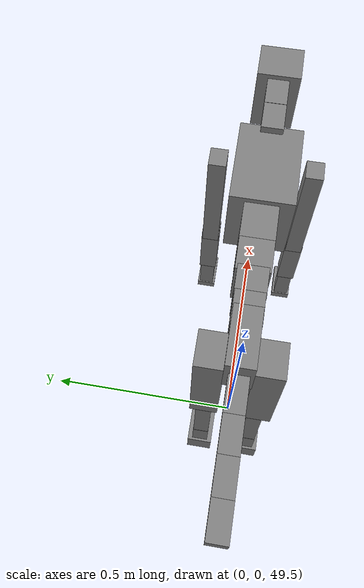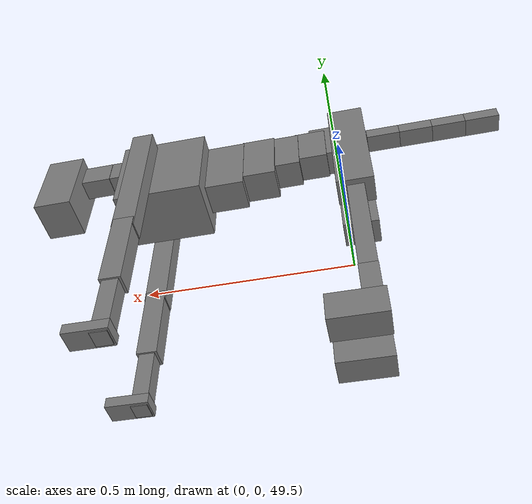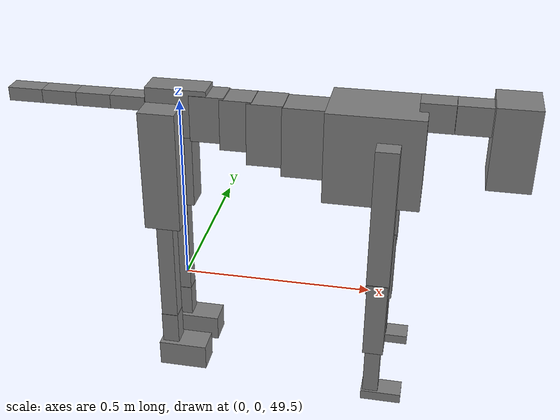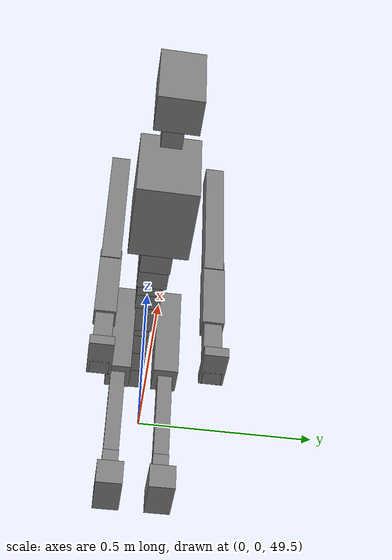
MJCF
<mujoco model="dog">

    <default>
        <joint armature="0.02" stiffness="1" damping="0.2" limited="true"/>
        <geom condim="3" friction="1 0.05 0.05" margin="0.01"/>
        <motor ctrllimited="true" ctrlrange="-1.0 1.0" forcelimited="true" gear="50"/>
    </default>

    <compiler inertiafromgeom="true" angle="radian"/>

    <option timestep="0.016" iterations="50" tolerance="1e-10" solver="Newton" jacobian="dense" cone="pyramidal"/>

    <size nconmax="20000" njmax="60000" nstack="5000000"/>
    <visual>
        <map force="0.1" zfar="30"/>
        <rgba haze="0.15 0.25 0.35 1"/>
        <quality shadowsize="2048"/>
        <global offwidth="800" offheight="800"/>
    </visual>

    <asset>
        <texture type="skybox" builtin="gradient" rgb1="0.3 0.5 0.7" rgb2="0 0 0" width="512" height="512"/>
        <texture name="texplane" type="2d" builtin="checker" rgb1=".2 .3 .4" rgb2=".1 0.15 0.2" width="512" height="512"
                 mark="cross" markrgb=".8 .8 .8"/>
        <texture name="texgeom" type="cube" builtin="flat" mark="cross" width="127" height="1278" rgb1="0.8 0.6 0.4"
                 rgb2="0.8 0.6 0.4" markrgb="1 1 1" random="0.01"/>

        <material name="matplane" reflectance="0.3" texture="texplane" texrepeat="1 1" texuniform="true"/>
        <material name="matgeom" texture="texgeom" texuniform="true" rgba="0.8 0.6 .4 1"/>
    </asset>

    <worldbody>
        <geom name="floor" pos="0 0 0" size="0 0 .25" type="plane" material="matplane" condim="3"/>

        <light directional="false" diffuse=".2 .2 .2" specular="0 0 0" pos="0 0 5" dir="0 0 -1" castshadow="false"/>
        <light mode="targetbodycom" target="torso" directional="false" diffuse=".8 .8 .8" specular="0.3 0.3 0.3"
               pos="0 0 4.0" dir="0 0 -1"/>

        <body name="root" pos="0 0 50">
            <freejoint name="root_1"/>
            <geom type="box" pos="0 0 -0.02" size="0.0774  0.0358  0.063" density="2030"/>

            <body name="spine1" pos="0.054 0 0">
                <joint name="spine1_y" axis="0 1 0" range="0 0.7" limited="true"/>
                <geom type="box" pos="0.02375 0 -0.03" size="0.04375  0.0375  0.05985" density="2030"/>

                <body name="spine2" pos="0.0612 0 0">
                    <joint name="spine2_y" axis="0 1 0" range="-0.15 0.15" limited="true"/>
                    <geom type="box" pos="0.03555  0  -0.04" size="0.04055  0.039  0.06615" density="2030"/>

                    <body name="spine3" pos="0.0730 0 0">
                        <joint name="spine3_y" axis="0 1 0" range="-0.15 0.15" limited="true"/>
                        <geom type="box" pos="0.03555  0  -0.057" size="0.04555  0.0445  0.081" density="2030"/>

                        <body name="spine4" pos="0.0780 0 0">
                            <joint name="spine4_y" axis="0 1 0" range="-0.15 0.15" limited="true"/>
                            <geom type="box" pos="0.05265  0  -0.07" size="0.05265  0.045  0.09135" density="2030"/>

                            <body name="torso" pos="0.1082 0 0">
                                <joint name="torso_y" axis="0 1 0" range="-0.15 0.15" limited="true"/>
                                <geom type="box" pos="0.11925  0  -0.085" size="0.11925  0.085  0.11745"
                                      density="2030"/>

                                <body name="neck1" pos="0.2160  0   0.0180">
                                    <joint name="neck1_y" axis="0 1 0" range="-1.2  -1" limited="true"/>
                                    <geom type="box" pos="0.0423  0  0" size="0.0423  0.03  0.036" density="2325"/>

                                    <body name="neck2" pos="0.0853  0  0">
                                        <joint name="neck2_y" axis="0 1 0" range="0.1  0" limited="true"/>
                                        <geom type="box" pos="0.0423  0  0" size="0.0423  0.03  0.036" density="2325"/>

                                        <body name="head" pos="0.0853  0  0">
                                            <joint name="head_y" axis="0 1 0" range="-0.3  -0.2" limited="true"/>
                                            <geom type="box" pos="0.0531  0  -0.055" size="0.0531  0.06  0.1044"
                                                  density="4030"/>

                                        </body>
                                    </body>
                                </body>

                                <body name="front_shoulder" pos="0.156  0   -0.0480">
                                    <joint name="front_shoulder_y" axis="0 1 0" range="-1 1.5" limited="true"/>
                                    <geom type="box" pos="0 0.13 -0.1673" size="0.0284  0.0243  0.1939" density="1158"/>
                                    <geom type="box" pos="0 -0.13 -0.1673" size="0.0284  0.0243  0.1939"
                                          density="1158"/>

                                    <body name="front_elbow" pos="0  0  -0.3345">
                                        <joint name="front_elbow_y" axis="0 1 0" range="-2 0" limited="true"/>
                                        <geom type="box" pos="0 0.13 -0.1033" size="0.0260  0.0265  0.1033"
                                              density="1081"/>
                                        <geom type="box" pos="0 -0.13 -0.1033" size="0.0260  0.0265  0.1033"
                                              density="1081"/>

                                        <body name="front_wrist" pos="0  0  -0.2066">
                                            <joint name="front_wrist_y" axis="0 1 0" range="-0.2 0" limited="true"/>
                                            <geom type="box" pos="0 0.13 -0.0694" size="0.0199  0.0221  0.0825"
                                                  density="1664"/>
                                            <geom type="box" pos="0 -0.13 -0.0694" size="0.0199  0.0221  0.0825"
                                                  density="1664"/>

                                            <body name="front_finger_end" pos="0  0  -0.1387">
                                                <joint name="front_finger_y" axis="0 1 0" range="-0.4 1"
                                                       limited="true"/>
                                                <geom type="box" pos="0.0284  0.13  0.0022"
                                                      size="0.0520  0.0284  0.0128" density="1515"/>
                                                <geom type="box" pos="0.0284  -0.13  0.0022"
                                                      size="0.0520  0.0284  0.0128" density="1515"/>

                                            </body>

                                        </body>
                                    </body>
                                </body>

                            </body>
                        </body>
                    </body>
                </body>
            </body>

            <body name="back_hip" pos="-0.03 0 -0.018">
                <joint name="back_hip_y" axis="0 1 0" range="-1.5 0.3" limited="true"/>
                <geom type="box" pos="0 0.07 -0.1358" size="0.0464  0.0364  0.1586" density="1154"/>
                <geom type="box" pos="0 -0.07 -0.1358" size="0.0464  0.0364  0.1586" density="1154"/>

                <body name="back_knee" pos="0  0  -0.2716">
                    <joint name="back_knee_y" axis="0 1 0" range="0 2.8" limited="true"/>
                    <geom type="box" pos="0 0.07 -0.1561" size="0.0217  0.0214  0.1716" density="1227"/>
                    <geom type="box" pos="0 -0.07 -0.1561" size="0.0217  0.0214  0.1716" density="1227"/>

                    <body name="back_ankle" pos="0  0  -0.3122">
                        <joint name="back_ankle_y" axis="0 1 0" range="-2.2 0" limited="true"/>
                        <geom type="box" pos="0 0.07 -0.0459" size="0.0224  0.0224  0.0571" density="1284"/>
                        <geom type="box" pos="0 -0.07 -0.0459" size="0.0224  0.0224  0.0571" density="1284"/>

                        <body name="back_toe_end" pos="0  0  -0.0918">
                            <joint name="back_toe_y" axis="0 1 0" range="-0.4 1" limited="true"/>
                            <geom type="box" pos="0.0356  0.07  -0.0202" size="0.0652  0.0356  0.0352" density="1515"/>
                            <geom type="box" pos="0.0356  -0.07  -0.0202" size="0.0652  0.0356  0.0352" density="1515"/>

                        </body>
                    </body>
                </body>
            </body>

            <body name="tail1" pos="-0.074 0 -0.006">
                <joint name="tail1_y" axis="0 1 0" range="-0.2 0.2" limited="true"/>
                <geom type="box" pos="-0.0536  0  0" size="0.045  0.025  0.0175" density="1587"/>

                <body name="tail2" pos="-0.09 0 0">
                    <joint name="tail2_y" axis="0 1 0" range="-0.2 0.2" limited="true"/>
                    <geom type="box" pos="-0.0536  0  0" size="0.045  0.025  0.0175" density="1587"/>

                    <body name="tail3" pos="-0.09 0 0">
                        <joint name="tail3_y" axis="0 1 0" range="-0.2 0.2" limited="true"/>
                        <geom type="box" pos="-0.0536  0  0" size="0.045  0.025  0.0175" density="1587"/>

                        <body name="tail4" pos="-0.09 0 0">
                            <joint name="tail4_y" axis="0 1 0" range="-0.2 0.2" limited="true"/>
                            <geom type="box" pos="-0.0536  0  0" size="0.045  0.025  0.0175" density="1587"/>

                        </body>
                    </body>
                </body>
            </body>
        </body>
    </worldbody>

    <actuator>
        <motor joint="spine1_y" forcerange="-150 150     "/>
        <motor joint="spine2_y" forcerange="-150 150     "/>
        <motor joint="spine3_y" forcerange="-150 150     "/>
        <motor joint="spine4_y" forcerange="-150 150     "/>
        <motor joint="torso_y" forcerange="-150 150     "/>
        <motor joint="neck1_y" forcerange="-100 100       "/>
        <motor joint="neck2_y" forcerange="-100 100       "/>
        <motor joint="head_y" forcerange="-150 150       "/>
        <motor joint="front_shoulder_y" forcerange="-154.73 107.12"/>
        <motor joint="front_elbow_y" forcerange="-111.74 181.24"/>
        <motor joint="front_wrist_y" forcerange="-79.47 97.40"/>
        <motor joint="front_finger_y" forcerange="-46.34 64.94"/>
        <motor joint="back_hip_y" forcerange="-351.73 333.22"/>
        <motor joint="back_knee_y" forcerange="-249.51 261.92"/>
        <motor joint="back_angle_y" forcerange="-91.31 166.86"/>
        <motor joint="back_toe_y" forcerange="-99.31 105.40"/>
        <motor joint="tail1_y" forcerange="-50 50     "/>
        <motor joint="tail2_y" forcerange="-50 50     "/>
        <motor joint="tail3_y" forcerange="-50 50     "/>
        <motor joint="tail4_y" forcerange="-50 50     "/>
    </actuator>
</mujoco>
